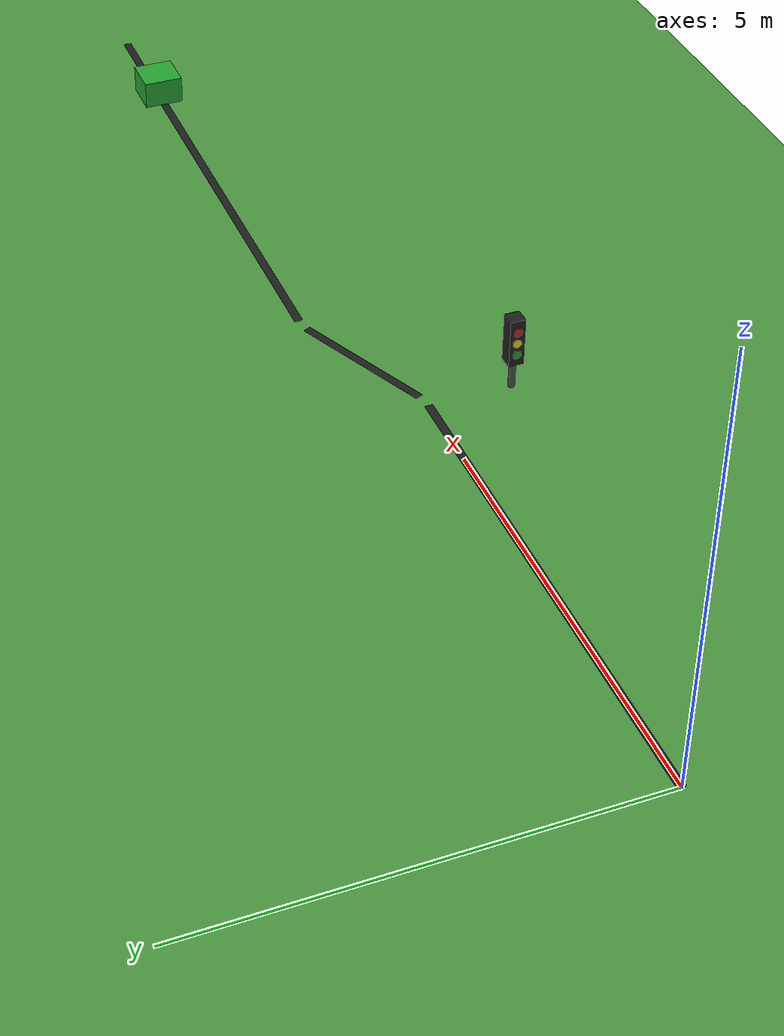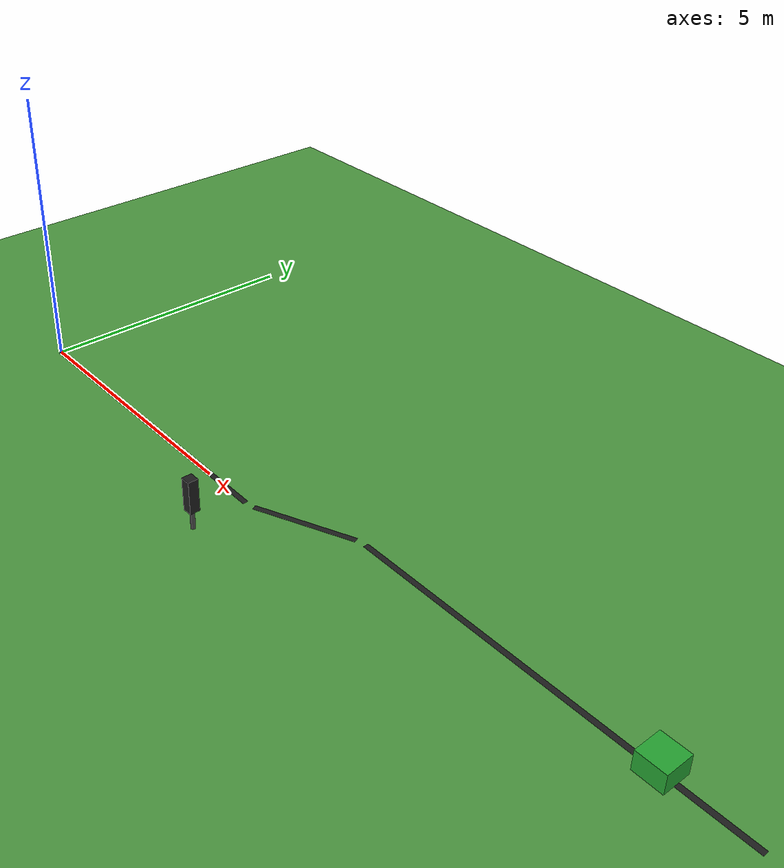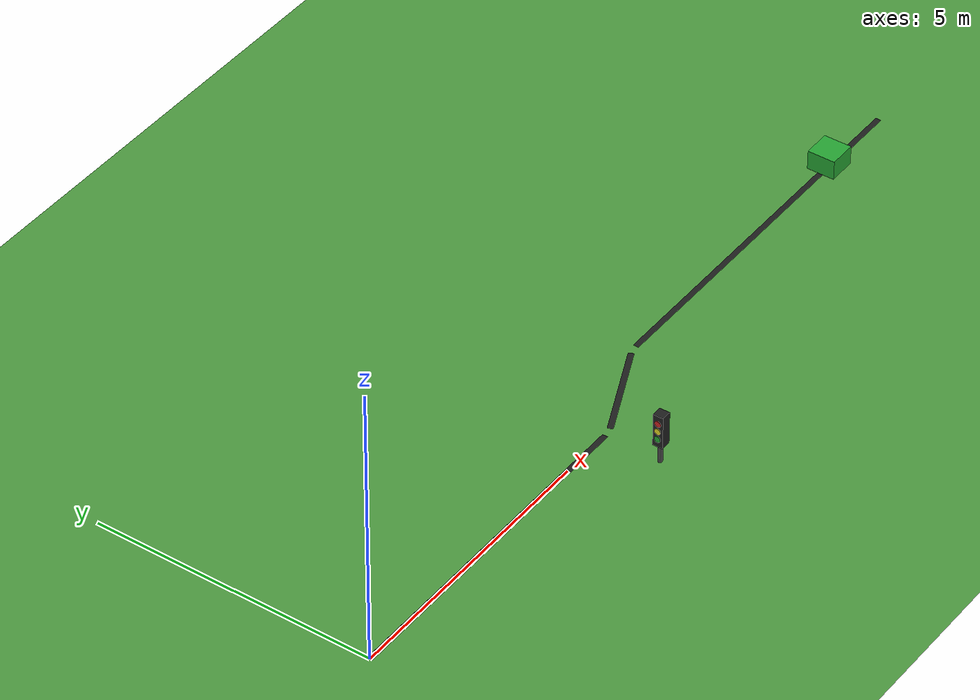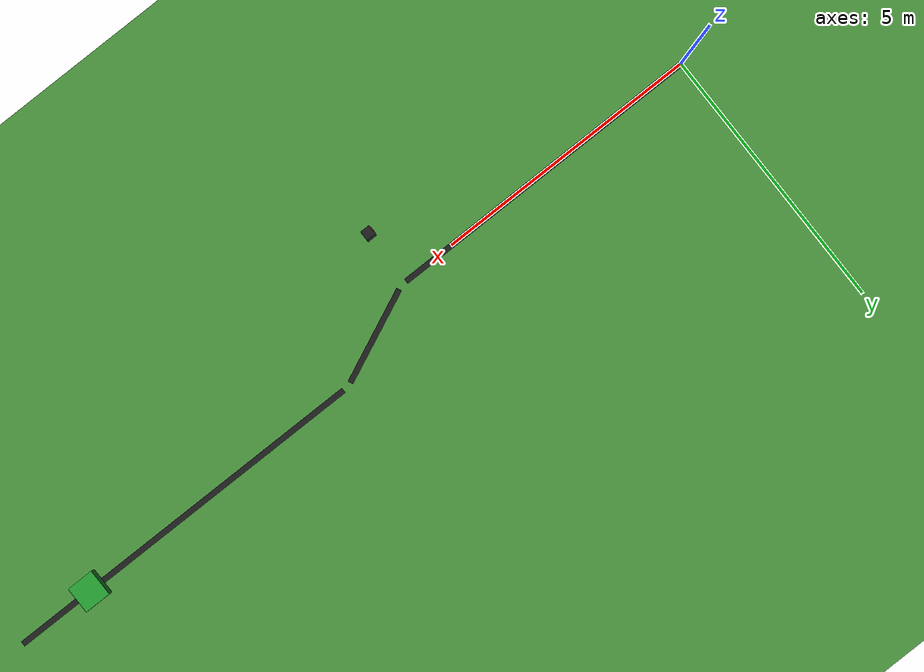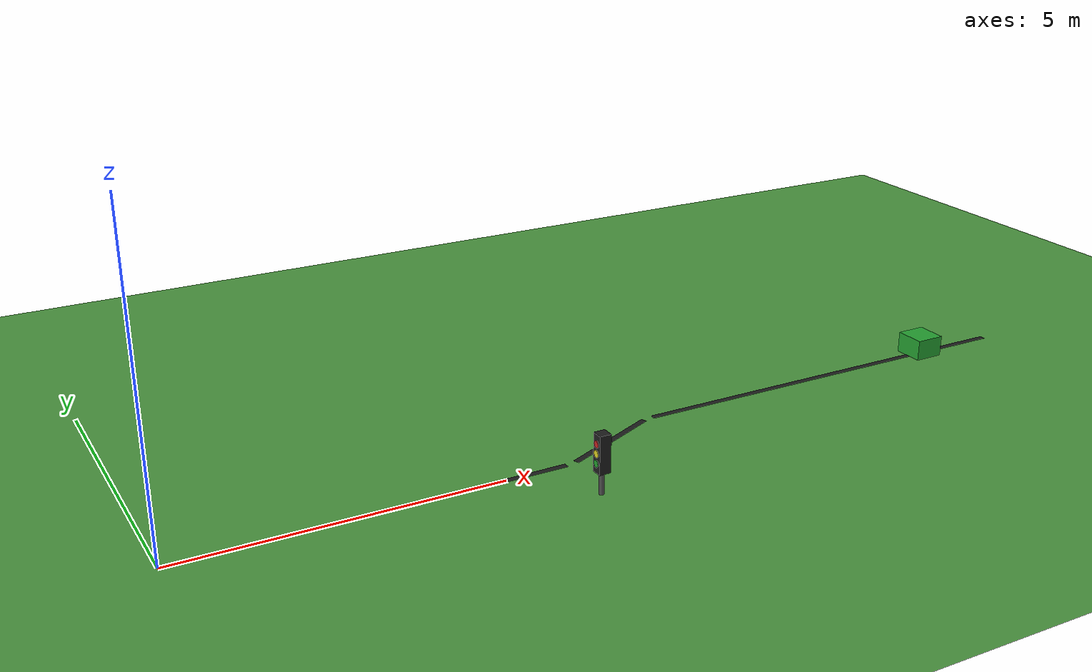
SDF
<sdf version="1.6">
 <world name="park_scene">
  <light type="directional" name="sun">
   <pose>0 0 10 0 0 0</pose>
   <diffuse>0.90 0.82 0.65 1</diffuse>
   <specular>0.25 0.22 0.15 1</specular>
   <attenuation>
    <range>1000</range>
    <constant>0.9</constant>
    <linear>0.01</linear>
    <quadratic>0.001</quadratic>
   </attenuation>
   <direction>-0.7 0.4 -0.55</direction>
  </light>
  <model name="ground_plane">
   <static>true</static>
   <link name="link">
    <collision name="collision">
     <geometry><plane><normal>0 0 1</normal><size>100 100</size></plane></geometry>
     <surface><friction><ode><mu>100</mu><mu2>50</mu2></ode></friction></surface>
    </collision>
    <visual name="visual">
     <cast_shadows>false</cast_shadows>
     <geometry><plane><normal>0 0 1</normal><size>100 100</size></plane></geometry>
     <material>
      <script><uri>file://media/materials/scripts/gazebo.material</uri><name>Gazebo/Grass</name></script>
     </material>
    </visual>
   </link>
  </model>
  <model name="lane_segment_1">
   <static>true</static>
   <link name="link">
    <visual name="visual">
     <geometry><box><size>6.0 0.10 0.001</size></box></geometry>
     <material>
      <script><uri>file://media/materials/scripts/gazebo.material</uri><name>Gazebo/FlatBlack</name></script>
     </material>
    </visual>
   </link>
   <pose>3.0 0.0 0.0005 0 0 0</pose>
  </model>
  <model name="lane_segment_2">
   <static>true</static>
   <link name="link">
    <visual name="visual">
     <geometry><box><size>1.8 0.10 0.001</size></box></geometry>
     <material>
      <script><uri>file://media/materials/scripts/gazebo.material</uri><name>Gazebo/FlatBlack</name></script>
     </material>
    </visual>
   </link>
   <pose>7.0 0.4 0.0005 0 0 0.42</pose>
  </model>
  <model name="lane_segment_3">
   <static>true</static>
   <link name="link">
    <visual name="visual">
     <geometry><box><size>7.0 0.10 0.001</size></box></geometry>
     <material>
      <script><uri>file://media/materials/scripts/gazebo.material</uri><name>Gazebo/FlatBlack</name></script>
     </material>
    </visual>
   </link>
   <pose>11.5 0.8 0.0005 0 0 0</pose>
  </model>
  <model name="traffic_light">
   <static>true</static>
   <link name="pole">
    <collision name="collision">
     <geometry><cylinder><radius>0.04</radius><length>0.35</length></cylinder></geometry>
    </collision>
    <visual name="visual">
     <geometry><cylinder><radius>0.04</radius><length>0.35</length></cylinder></geometry>
     <material>
      <script><uri>file://media/materials/scripts/gazebo.material</uri><name>Gazebo/DarkGrey</name></script>
     </material>
    </visual>
    <pose>0 0 0.175 0 0 0</pose>
   </link>
   <link name="head">
    <collision name="collision"><geometry><box><size>0.18 0.18 0.60</size></box></geometry></collision>
    <visual name="visual">
     <geometry><box><size>0.18 0.18 0.60</size></box></geometry>
     <material>
      <script><uri>file://media/materials/scripts/gazebo.material</uri><name>Gazebo/FlatBlack</name></script>
     </material>
    </visual>
    <pose>0 0 0.65 0 0 0</pose>
   </link>
   <link name="red_light">
    <visual name="visual">
     <geometry><cylinder><radius>0.055</radius><length>0.02</length></cylinder></geometry>
     <material>
      <script><uri>file://media/materials/scripts/gazebo.material</uri><name>Gazebo/Red</name></script>
     </material>
    </visual>
    <pose>0 0.091 0.80 1.5708 0 0</pose>
   </link>
   <link name="yellow_light">
    <visual name="visual">
     <geometry><cylinder><radius>0.055</radius><length>0.02</length></cylinder></geometry>
     <material>
      <script><uri>file://media/materials/scripts/gazebo.material</uri><name>Gazebo/Yellow</name></script>
     </material>
    </visual>
    <pose>0 0.091 0.65 1.5708 0 0</pose>
   </link>
   <link name="green_light">
    <visual name="visual">
     <geometry><cylinder><radius>0.055</radius><length>0.02</length></cylinder></geometry>
     <material>
      <script><uri>file://media/materials/scripts/gazebo.material</uri><name>Gazebo/Green</name></script>
     </material>
    </visual>
    <pose>0 0.091 0.50 1.5708 0 0</pose>
   </link>
   <pose>6.0 -1.0 0.0 0 0 1.5708</pose>
  </model>
  <model name="obstacle_box">
   <static>true</static>
   <link name="link">
    <collision name="collision"><geometry><box><size>0.5 0.5 0.35</size></box></geometry></collision>
    <visual name="visual">
     <geometry><box><size>0.5 0.5 0.35</size></box></geometry>
     <material>
      <script><uri>file://media/materials/scripts/gazebo.material</uri><name>Gazebo/Green</name></script>
     </material>
    </visual>
   </link>
   <pose>13.5 0.8 0.175 0 0 0</pose>
  </model>
 </world>
</sdf>
